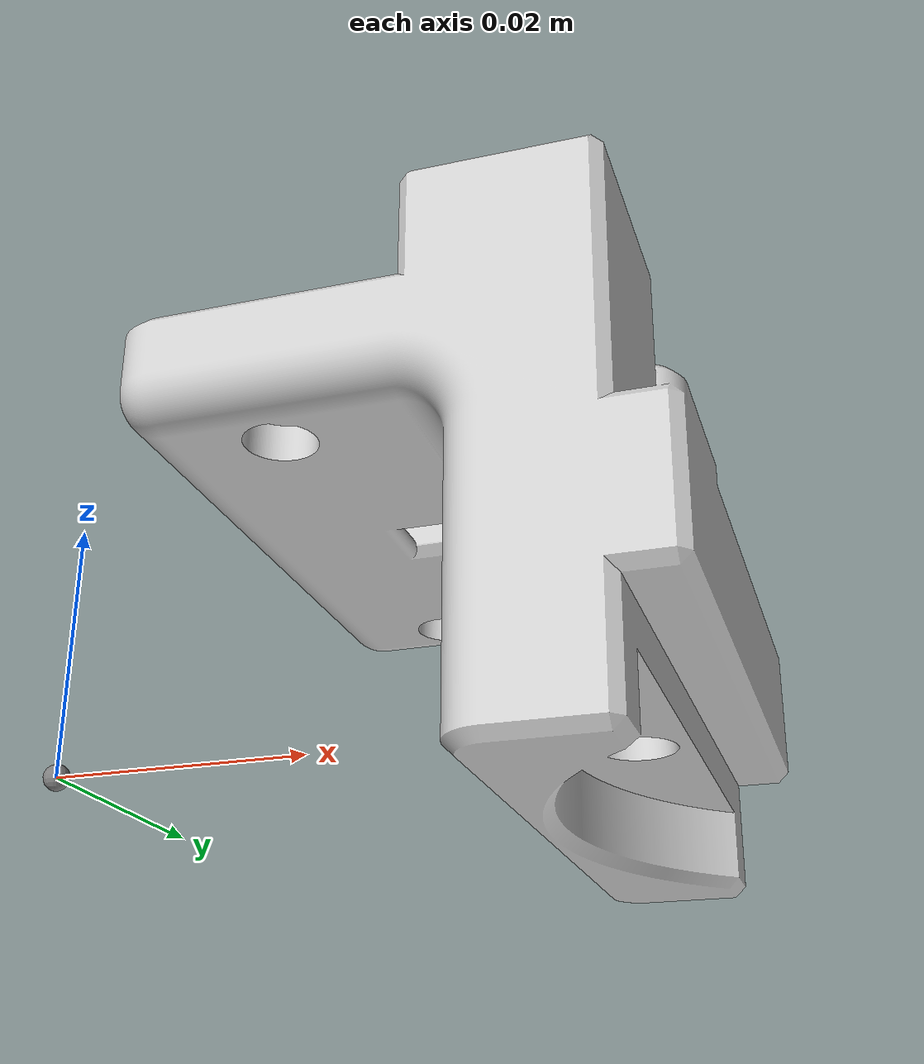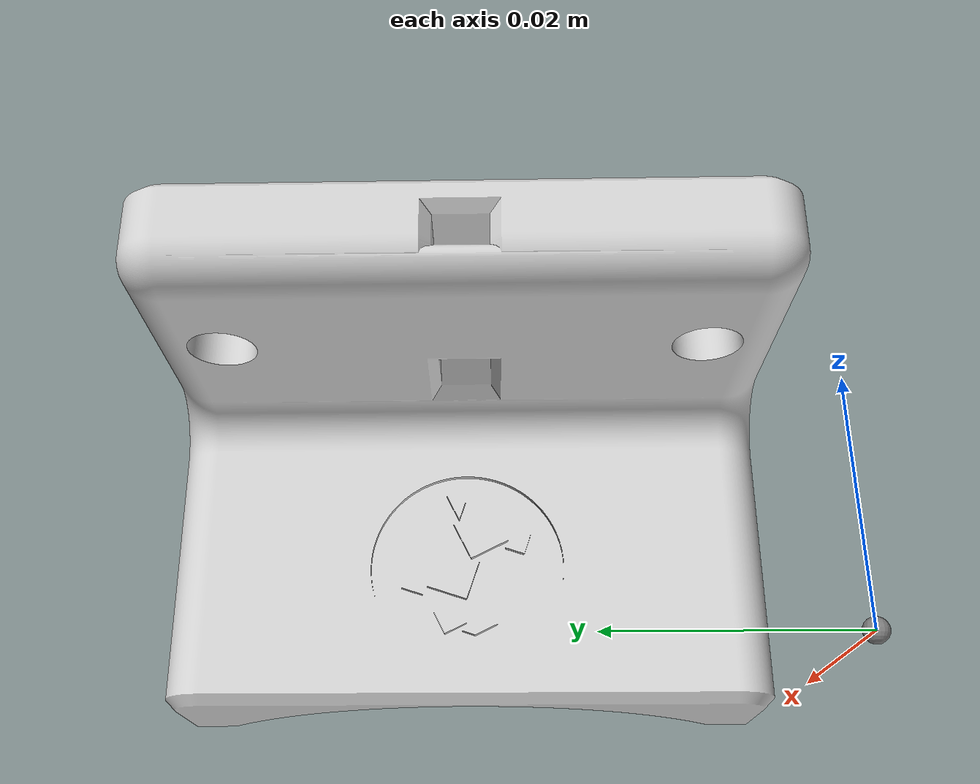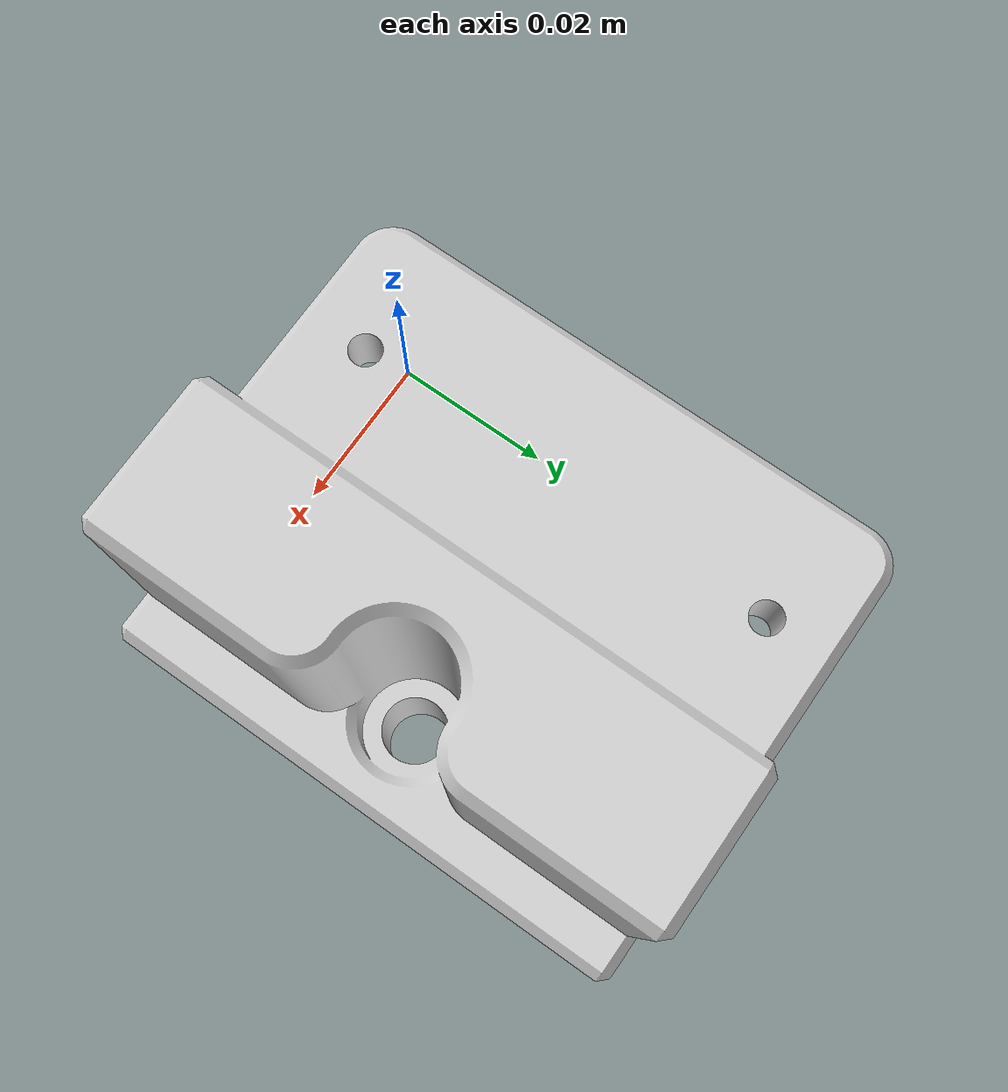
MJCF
<?xml version="1.0" encoding="utf-8"?>
<mujoco model="franka_d435_wrist_camera_mount">
  <compiler angle="radian" meshdir="assets" inertiafromgeom="false" fusestatic="false"/>
  <default>
    <geom density="0"/>
    <default class="visual">
      <geom contype="0" conaffinity="0" group="2" density="0"/>
    </default>
  </default>
  <asset>
    <material name="franka_printed_mount" rgba="0.82 0.82 0.82 1"/>
    <mesh name="franka_d435_wrist_camera_mount_visual" file="visual/franka_d435_wrist_camera_mount.obj"/>
  </asset>
  <worldbody>
    <!-- CAD-native origin only. A hand-relative assembly frame is intentionally
         not declared until it is derived from a common CAD assembly datum. -->
    <body name="franka_hand_camera_mount">
      <geom class="visual" type="mesh" mesh="franka_d435_wrist_camera_mount_visual"
            material="franka_printed_mount"/>
      <site name="franka_hand_camera_mount_cad_origin" size="0.001"/>
    </body>
  </worldbody>
</mujoco>
